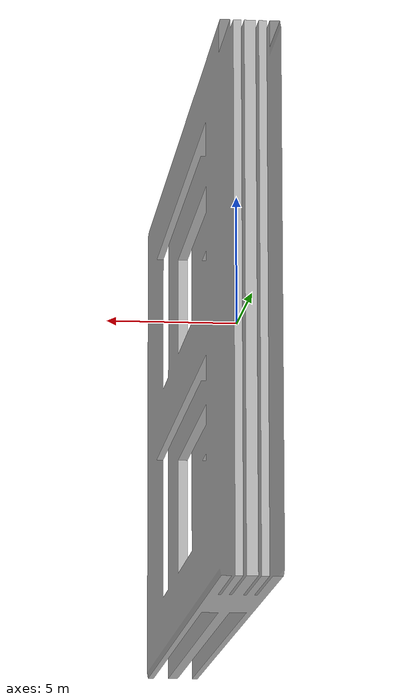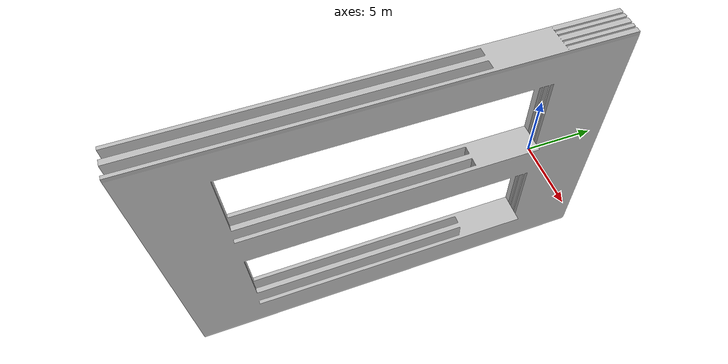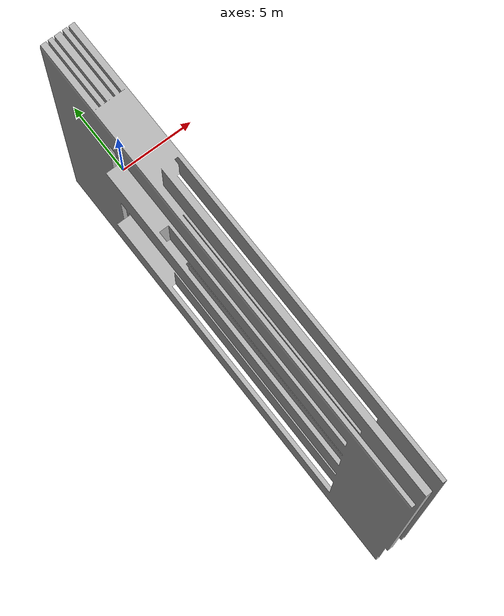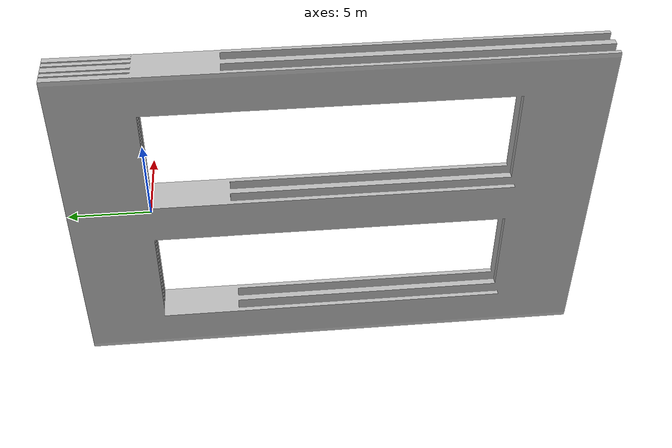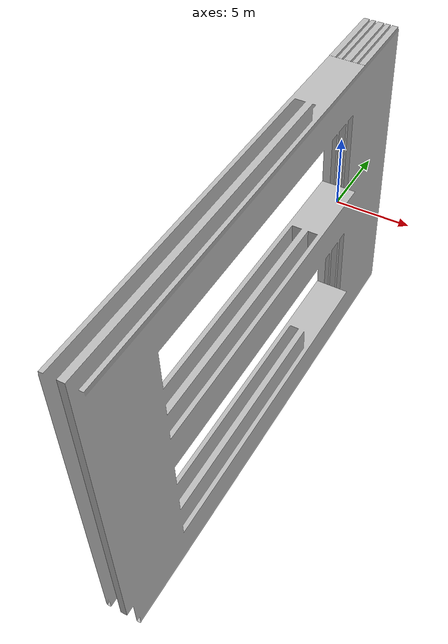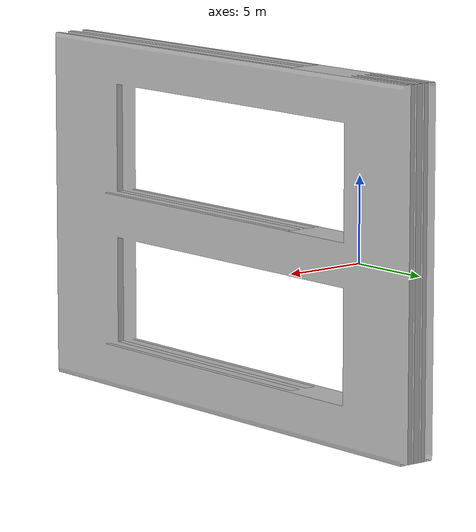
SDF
<?xml version="1.0" ?>
<sdf version="1.4">
	<model name="pallet770x1000x140mm">
		<static>true</static>
		<link name="link">
			<pose>0 0 0.06 0 0 0</pose>
			<collision name="collision">
				<geometry>
					<mesh>
						<uri>model://pallet300x1000x160mm/mesh/pallet.dae</uri>
						<!-- original size = 1.016 x 0.090678 x 0.090678 m -->
						<!-- final size = 0.3 x 1 x 0.16 m -->
						<scale>0.297 22 1.76</scale>
					</mesh>
				</geometry>
			</collision>
			<visual name="visual">
				<geometry>
					<mesh>
						<uri>model://pallet300x1000x160mm/mesh/pallet.dae</uri>
						<!-- original size = 1.016 x 0.090678 x 0.090678 m -->
						<!-- final size =  0.3 x 1 x 0.16 m -->
						<scale>0.297 22 1.76</scale>
					</mesh>
				</geometry>
			</visual>
		</link>
	</model>
</sdf>
